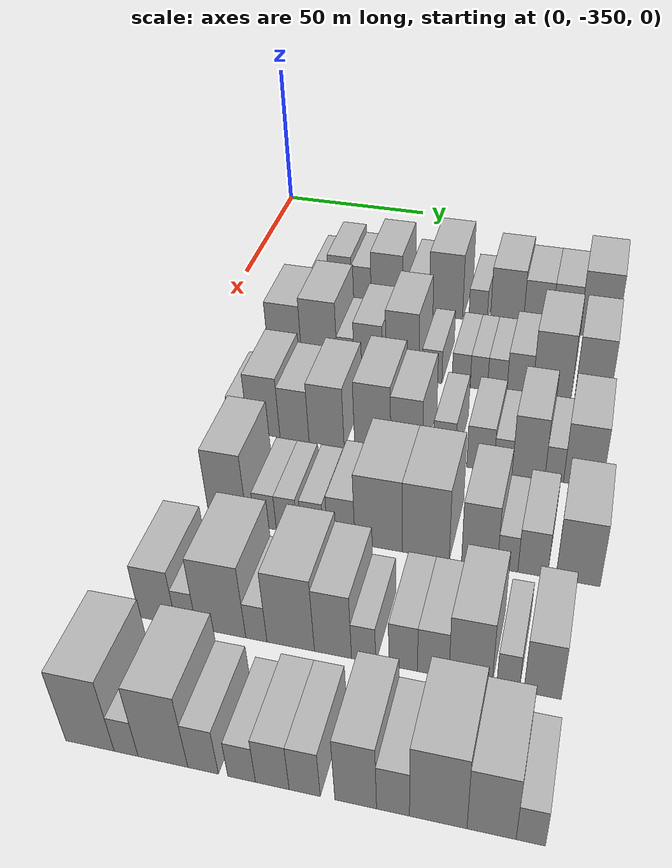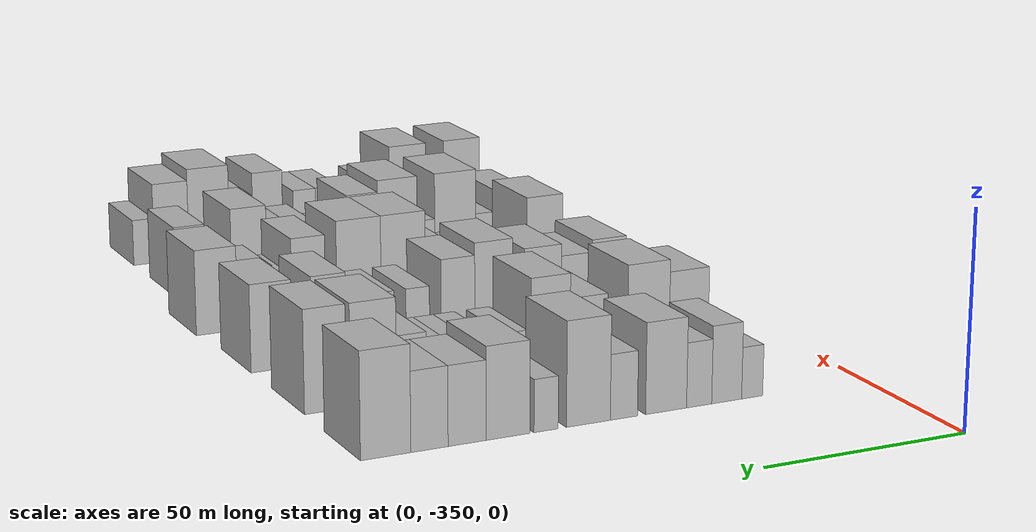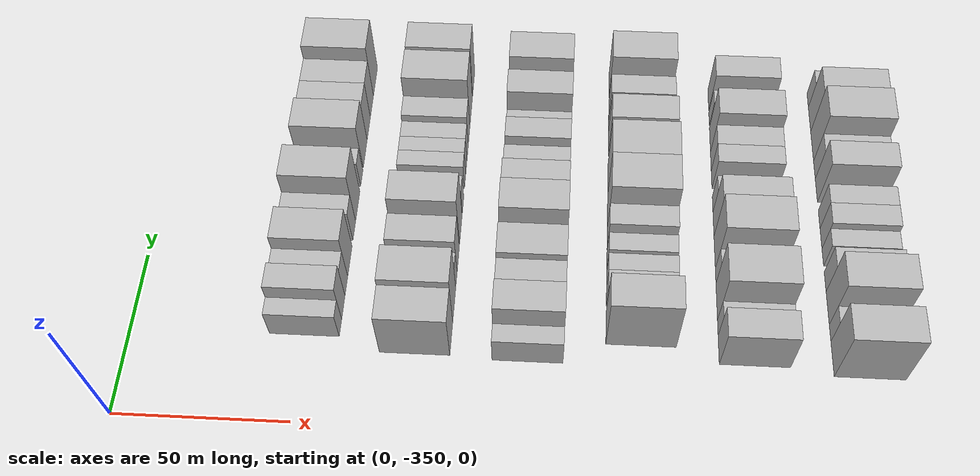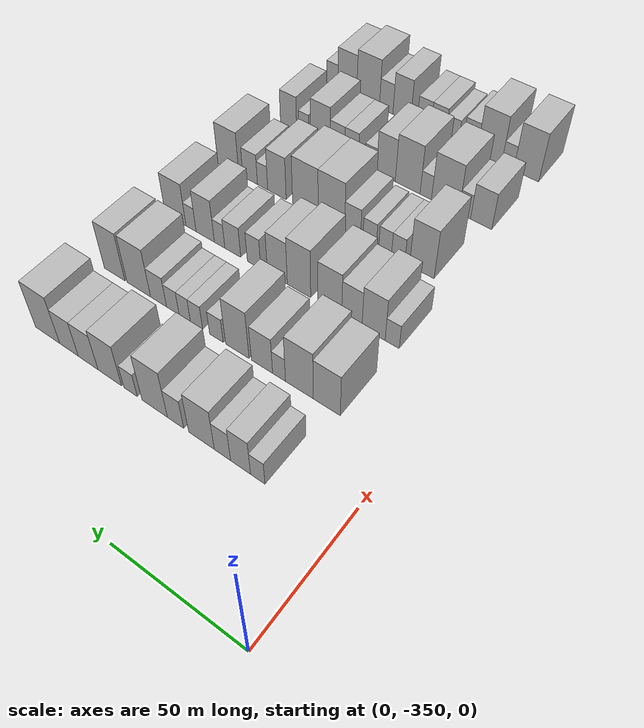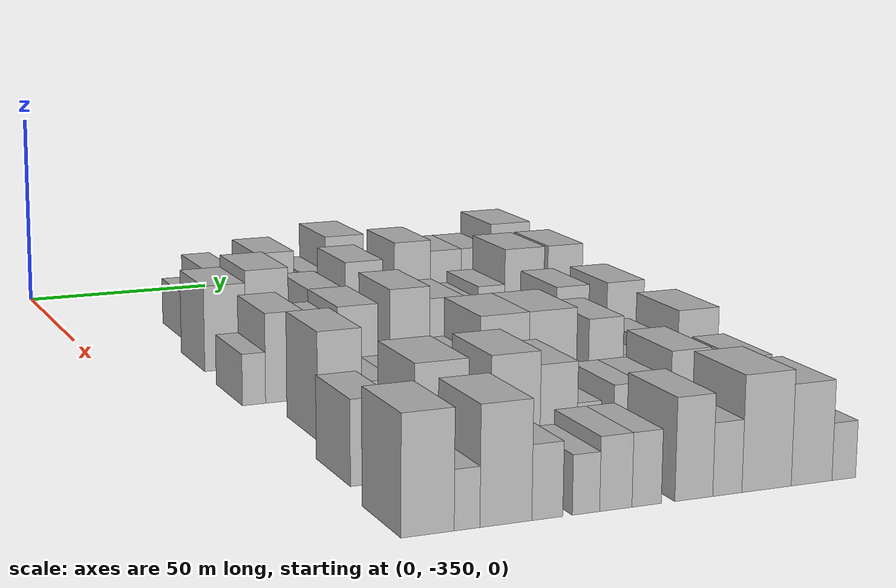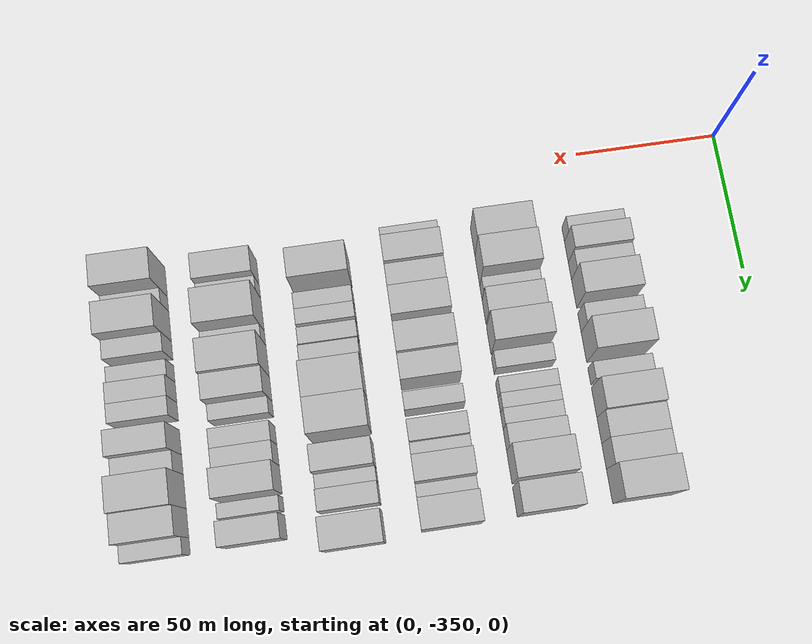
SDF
<sdf version="1.6">
 <world name="default">
  <model name="building_25">
   <static>1</static>
   <pose>50.0000 -320.9729 0 0.000000 0.000000 0.000000</pose>
   <link name="link">
    <pose>0 0 6.00 0 0 0</pose>
    <collision name="collision"><geometry><box><size>20.0000 5.4237 12.0000</size></box></geometry></collision>
    <visual name="visual">
     <cast_shadows>0</cast_shadows>
     <geometry><box><size>20.0000 5.4237 12.0000</size></box></geometry>
     <material>
      <script>
       <uri>model://HANNAS_wall/materials/scripts</uri>
       <uri>model://HANNAS_wall/materials/textures</uri>
       <name>vrc/HANNAS_wall</name>
      </script>
     </material>
    </visual>
   </link>
  </model>
  <model name="building_26">
   <static>1</static>
   <pose>50.0000 -314.4397 0 0.000000 0.000000 0.000000</pose>
   <link name="link">
    <pose>0 0 9.00 0 0 0</pose>
    <collision name="collision"><geometry><box><size>20.0000 7.6427 18.0000</size></box></geometry></collision>
    <visual name="visual">
     <cast_shadows>0</cast_shadows>
     <geometry><box><size>20.0000 7.6427 18.0000</size></box></geometry>
     <material>
      <script>
       <uri>model://HANNAS_wall/materials/scripts</uri>
       <uri>model://HANNAS_wall/materials/textures</uri>
       <name>vrc/HANNAS_wall</name>
      </script>
     </material>
    </visual>
   </link>
  </model>
  <model name="building_27">
   <static>1</static>
   <pose>50.0000 -307.4403 0 0.000000 0.000000 0.000000</pose>
   <link name="link">
    <pose>0 0 7.50 0 0 0</pose>
    <collision name="collision"><geometry><box><size>20.0000 6.3560 15.0000</size></box></geometry></collision>
    <visual name="visual">
     <cast_shadows>0</cast_shadows>
     <geometry><box><size>20.0000 6.3560 15.0000</size></box></geometry>
     <material>
      <script>
       <uri>model://HANNAS_wall/materials/scripts</uri>
       <uri>model://HANNAS_wall/materials/textures</uri>
       <name>vrc/HANNAS_wall</name>
      </script>
     </material>
    </visual>
   </link>
  </model>
  <model name="building_28">
   <static>1</static>
   <pose>50.0000 -299.1356 0 0.000000 0.000000 0.000000</pose>
   <link name="link">
    <pose>0 0 10.50 0 0 0</pose>
    <collision name="collision"><geometry><box><size>20.0000 10.2535 21.0000</size></box></geometry></collision>
    <visual name="visual">
     <cast_shadows>0</cast_shadows>
     <geometry><box><size>20.0000 10.2535 21.0000</size></box></geometry>
     <material>
      <script>
       <uri>model://HANNAS_wall/materials/scripts</uri>
       <uri>model://HANNAS_wall/materials/textures</uri>
       <name>vrc/HANNAS_wall</name>
      </script>
     </material>
    </visual>
   </link>
  </model>
  <model name="building_29">
   <static>1</static>
   <pose>50.0000 -288.6605 0 0.000000 0.000000 0.000000</pose>
   <link name="link">
    <pose>0 0 7.50 0 0 0</pose>
    <collision name="collision"><geometry><box><size>20.0000 6.6967 15.0000</size></box></geometry></collision>
    <visual name="visual">
     <cast_shadows>0</cast_shadows>
     <geometry><box><size>20.0000 6.6967 15.0000</size></box></geometry>
     <material>
      <script>
       <uri>model://HANNAS_wall/materials/scripts</uri>
       <uri>model://HANNAS_wall/materials/textures</uri>
       <name>vrc/HANNAS_wall</name>
      </script>
     </material>
    </visual>
   </link>
  </model>
  <model name="building_30">
   <static>1</static>
   <pose>50.0000 -279.9709 0 0.000000 0.000000 0.000000</pose>
   <link name="link">
    <pose>0 0 12.00 0 0 0</pose>
    <collision name="collision"><geometry><box><size>20.0000 10.6824 24.0000</size></box></geometry></collision>
    <visual name="visual">
     <cast_shadows>0</cast_shadows>
     <geometry><box><size>20.0000 10.6824 24.0000</size></box></geometry>
     <material>
      <script>
       <uri>model://HANNAS_wall/materials/scripts</uri>
       <uri>model://HANNAS_wall/materials/textures</uri>
       <name>vrc/HANNAS_wall</name>
      </script>
     </material>
    </visual>
   </link>
  </model>
  <model name="building_31">
   <static>1</static>
   <pose>50.0000 -269.7343 0 0.000000 0.000000 0.000000</pose>
   <link name="link">
    <pose>0 0 6.00 0 0 0</pose>
    <collision name="collision"><geometry><box><size>20.0000 5.7908 12.0000</size></box></geometry></collision>
    <visual name="visual">
     <cast_shadows>0</cast_shadows>
     <geometry><box><size>20.0000 5.7908 12.0000</size></box></geometry>
     <material>
      <script>
       <uri>model://HANNAS_wall/materials/scripts</uri>
       <uri>model://HANNAS_wall/materials/textures</uri>
       <name>vrc/HANNAS_wall</name>
      </script>
     </material>
    </visual>
   </link>
  </model>
  <model name="building_32">
   <static>1</static>
   <pose>50.0000 -260.6499 0 0.000000 0.000000 0.000000</pose>
   <link name="link">
    <pose>0 0 10.50 0 0 0</pose>
    <collision name="collision"><geometry><box><size>20.0000 10.3780 21.0000</size></box></geometry></collision>
    <visual name="visual">
     <cast_shadows>0</cast_shadows>
     <geometry><box><size>20.0000 10.3780 21.0000</size></box></geometry>
     <material>
      <script>
       <uri>model://HANNAS_wall/materials/scripts</uri>
       <uri>model://HANNAS_wall/materials/textures</uri>
       <name>vrc/HANNAS_wall</name>
      </script>
     </material>
    </visual>
   </link>
  </model>
  <model name="building_33">
   <static>1</static>
   <pose>50.0000 -251.0242 0 0.000000 0.000000 0.000000</pose>
   <link name="link">
    <pose>0 0 9.00 0 0 0</pose>
    <collision name="collision"><geometry><box><size>20.0000 8.8733 18.0000</size></box></geometry></collision>
    <visual name="visual">
     <cast_shadows>0</cast_shadows>
     <geometry><box><size>20.0000 8.8733 18.0000</size></box></geometry>
     <material>
      <script>
       <uri>model://HANNAS_wall/materials/scripts</uri>
       <uri>model://HANNAS_wall/materials/textures</uri>
       <name>vrc/HANNAS_wall</name>
      </script>
     </material>
    </visual>
   </link>
  </model>
  <model name="building_34">
   <static>1</static>
   <pose>50.0000 -242.2823 0 0.000000 0.000000 0.000000</pose>
   <link name="link">
    <pose>0 0 9.00 0 0 0</pose>
    <collision name="collision"><geometry><box><size>20.0000 8.6106 18.0000</size></box></geometry></collision>
    <visual name="visual">
     <cast_shadows>0</cast_shadows>
     <geometry><box><size>20.0000 8.6106 18.0000</size></box></geometry>
     <material>
      <script>
       <uri>model://HANNAS_wall/materials/scripts</uri>
       <uri>model://HANNAS_wall/materials/textures</uri>
       <name>vrc/HANNAS_wall</name>
      </script>
     </material>
    </visual>
   </link>
  </model>
  <model name="building_35">
   <static>1</static>
   <pose>50.0000 -232.2454 0 0.000000 0.000000 0.000000</pose>
   <link name="link">
    <pose>0 0 12.00 0 0 0</pose>
    <collision name="collision"><geometry><box><size>20.0000 11.4630 24.0000</size></box></geometry></collision>
    <visual name="visual">
     <cast_shadows>0</cast_shadows>
     <geometry><box><size>20.0000 11.4630 24.0000</size></box></geometry>
     <material>
      <script>
       <uri>model://HANNAS_wall/materials/scripts</uri>
       <uri>model://HANNAS_wall/materials/textures</uri>
       <name>vrc/HANNAS_wall</name>
      </script>
     </material>
    </visual>
   </link>
  </model>
  <model name="building_143">
   <static>1</static>
   <pose>82.0000 -322.7905 0 0.000000 0.000000 0.000000</pose>
   <link name="link">
    <pose>0 0 10.50 0 0 0</pose>
    <collision name="collision"><geometry><box><size>20.0000 10.4053 21.0000</size></box></geometry></collision>
    <visual name="visual">
     <cast_shadows>0</cast_shadows>
     <geometry><box><size>20.0000 10.4053 21.0000</size></box></geometry>
     <material>
      <script>
       <uri>model://HANNAS_wall/materials/scripts</uri>
       <uri>model://HANNAS_wall/materials/textures</uri>
       <name>vrc/HANNAS_wall</name>
      </script>
     </material>
    </visual>
   </link>
  </model>
  <model name="building_144">
   <static>1</static>
   <pose>82.0000 -312.1090 0 0.000000 0.000000 0.000000</pose>
   <link name="link">
    <pose>0 0 12.00 0 0 0</pose>
    <collision name="collision"><geometry><box><size>20.0000 10.9579 24.0000</size></box></geometry></collision>
    <visual name="visual">
     <cast_shadows>0</cast_shadows>
     <geometry><box><size>20.0000 10.9579 24.0000</size></box></geometry>
     <material>
      <script>
       <uri>model://HANNAS_wall/materials/scripts</uri>
       <uri>model://HANNAS_wall/materials/textures</uri>
       <name>vrc/HANNAS_wall</name>
      </script>
     </material>
    </visual>
   </link>
  </model>
  <model name="building_145">
   <static>1</static>
   <pose>82.0000 -304.0341 0 0.000000 0.000000 0.000000</pose>
   <link name="link">
    <pose>0 0 6.00 0 0 0</pose>
    <collision name="collision"><geometry><box><size>20.0000 5.1919 12.0000</size></box></geometry></collision>
    <visual name="visual">
     <cast_shadows>0</cast_shadows>
     <geometry><box><size>20.0000 5.1919 12.0000</size></box></geometry>
     <material>
      <script>
       <uri>model://HANNAS_wall/materials/scripts</uri>
       <uri>model://HANNAS_wall/materials/textures</uri>
       <name>vrc/HANNAS_wall</name>
      </script>
     </material>
    </visual>
   </link>
  </model>
  <model name="building_146">
   <static>1</static>
   <pose>82.0000 -297.1134 0 0.000000 0.000000 0.000000</pose>
   <link name="link">
    <pose>0 0 9.00 0 0 0</pose>
    <collision name="collision"><geometry><box><size>20.0000 8.6495 18.0000</size></box></geometry></collision>
    <visual name="visual">
     <cast_shadows>0</cast_shadows>
     <geometry><box><size>20.0000 8.6495 18.0000</size></box></geometry>
     <material>
      <script>
       <uri>model://HANNAS_wall/materials/scripts</uri>
       <uri>model://HANNAS_wall/materials/textures</uri>
       <name>vrc/HANNAS_wall</name>
      </script>
     </material>
    </visual>
   </link>
  </model>
  <model name="building_147">
   <static>1</static>
   <pose>82.0000 -286.8533 0 0.000000 0.000000 0.000000</pose>
   <link name="link">
    <pose>0 0 12.00 0 0 0</pose>
    <collision name="collision"><geometry><box><size>20.0000 9.8708 24.0000</size></box></geometry></collision>
    <visual name="visual">
     <cast_shadows>0</cast_shadows>
     <geometry><box><size>20.0000 9.8708 24.0000</size></box></geometry>
     <material>
      <script>
       <uri>model://HANNAS_wall/materials/scripts</uri>
       <uri>model://HANNAS_wall/materials/textures</uri>
       <name>vrc/HANNAS_wall</name>
      </script>
     </material>
    </visual>
   </link>
  </model>
  <model name="building_148">
   <static>1</static>
   <pose>82.0000 -277.9797 0 0.000000 0.000000 0.000000</pose>
   <link name="link">
    <pose>0 0 6.00 0 0 0</pose>
    <collision name="collision"><geometry><box><size>20.0000 5.8764 12.0000</size></box></geometry></collision>
    <visual name="visual">
     <cast_shadows>0</cast_shadows>
     <geometry><box><size>20.0000 5.8764 12.0000</size></box></geometry>
     <material>
      <script>
       <uri>model://HANNAS_wall/materials/scripts</uri>
       <uri>model://HANNAS_wall/materials/textures</uri>
       <name>vrc/HANNAS_wall</name>
      </script>
     </material>
    </visual>
   </link>
  </model>
  <model name="building_149">
   <static>1</static>
   <pose>82.0000 -269.3534 0 0.000000 0.000000 0.000000</pose>
   <link name="link">
    <pose>0 0 6.00 0 0 0</pose>
    <collision name="collision"><geometry><box><size>20.0000 5.3761 12.0000</size></box></geometry></collision>
    <visual name="visual">
     <cast_shadows>0</cast_shadows>
     <geometry><box><size>20.0000 5.3761 12.0000</size></box></geometry>
     <material>
      <script>
       <uri>model://HANNAS_wall/materials/scripts</uri>
       <uri>model://HANNAS_wall/materials/textures</uri>
       <name>vrc/HANNAS_wall</name>
      </script>
     </material>
    </visual>
   </link>
  </model>
  <model name="building_150">
   <static>1</static>
   <pose>82.0000 -264.1365 0 0.000000 0.000000 0.000000</pose>
   <link name="link">
    <pose>0 0 6.00 0 0 0</pose>
    <collision name="collision"><geometry><box><size>20.0000 5.0577 12.0000</size></box></geometry></collision>
    <visual name="visual">
     <cast_shadows>0</cast_shadows>
     <geometry><box><size>20.0000 5.0577 12.0000</size></box></geometry>
     <material>
      <script>
       <uri>model://HANNAS_wall/materials/scripts</uri>
       <uri>model://HANNAS_wall/materials/textures</uri>
       <name>vrc/HANNAS_wall</name>
      </script>
     </material>
    </visual>
   </link>
  </model>
  <model name="building_151">
   <static>1</static>
   <pose>82.0000 -258.7892 0 0.000000 0.000000 0.000000</pose>
   <link name="link">
    <pose>0 0 6.00 0 0 0</pose>
    <collision name="collision"><geometry><box><size>20.0000 5.6368 12.0000</size></box></geometry></collision>
    <visual name="visual">
     <cast_shadows>0</cast_shadows>
     <geometry><box><size>20.0000 5.6368 12.0000</size></box></geometry>
     <material>
      <script>
       <uri>model://HANNAS_wall/materials/scripts</uri>
       <uri>model://HANNAS_wall/materials/textures</uri>
       <name>vrc/HANNAS_wall</name>
      </script>
     </material>
    </visual>
   </link>
  </model>
  <model name="building_152">
   <static>1</static>
   <pose>82.0000 -252.3022 0 0.000000 0.000000 0.000000</pose>
   <link name="link">
    <pose>0 0 7.50 0 0 0</pose>
    <collision name="collision"><geometry><box><size>20.0000 7.3371 15.0000</size></box></geometry></collision>
    <visual name="visual">
     <cast_shadows>0</cast_shadows>
     <geometry><box><size>20.0000 7.3371 15.0000</size></box></geometry>
     <material>
      <script>
       <uri>model://HANNAS_wall/materials/scripts</uri>
       <uri>model://HANNAS_wall/materials/textures</uri>
       <name>vrc/HANNAS_wall</name>
      </script>
     </material>
    </visual>
   </link>
  </model>
  <model name="building_153">
   <static>1</static>
   <pose>82.0000 -243.1229 0 0.000000 0.000000 0.000000</pose>
   <link name="link">
    <pose>0 0 12.00 0 0 0</pose>
    <collision name="collision"><geometry><box><size>20.0000 11.0217 24.0000</size></box></geometry></collision>
    <visual name="visual">
     <cast_shadows>0</cast_shadows>
     <geometry><box><size>20.0000 11.0217 24.0000</size></box></geometry>
     <material>
      <script>
       <uri>model://HANNAS_wall/materials/scripts</uri>
       <uri>model://HANNAS_wall/materials/textures</uri>
       <name>vrc/HANNAS_wall</name>
      </script>
     </material>
    </visual>
   </link>
  </model>
  <model name="building_154">
   <static>1</static>
   <pose>82.0000 -231.6742 0 0.000000 0.000000 0.000000</pose>
   <link name="link">
    <pose>0 0 12.00 0 0 0</pose>
    <collision name="collision"><geometry><box><size>20.0000 9.8756 24.0000</size></box></geometry></collision>
    <visual name="visual">
     <cast_shadows>0</cast_shadows>
     <geometry><box><size>20.0000 9.8756 24.0000</size></box></geometry>
     <material>
      <script>
       <uri>model://HANNAS_wall/materials/scripts</uri>
       <uri>model://HANNAS_wall/materials/textures</uri>
       <name>vrc/HANNAS_wall</name>
      </script>
     </material>
    </visual>
   </link>
  </model>
  <model name="building_269">
   <static>1</static>
   <pose>114.0000 -326.0721 0 0.000000 0.000000 0.000000</pose>
   <link name="link">
    <pose>0 0 6.00 0 0 0</pose>
    <collision name="collision"><geometry><box><size>20.0000 5.5373 12.0000</size></box></geometry></collision>
    <visual name="visual">
     <cast_shadows>0</cast_shadows>
     <geometry><box><size>20.0000 5.5373 12.0000</size></box></geometry>
     <material>
      <script>
       <uri>model://HANNAS_wall/materials/scripts</uri>
       <uri>model://HANNAS_wall/materials/textures</uri>
       <name>vrc/HANNAS_wall</name>
      </script>
     </material>
    </visual>
   </link>
  </model>
  <model name="building_270">
   <static>1</static>
   <pose>114.0000 -318.6926 0 0.000000 0.000000 0.000000</pose>
   <link name="link">
    <pose>0 0 10.50 0 0 0</pose>
    <collision name="collision"><geometry><box><size>20.0000 9.2217 21.0000</size></box></geometry></collision>
    <visual name="visual">
     <cast_shadows>0</cast_shadows>
     <geometry><box><size>20.0000 9.2217 21.0000</size></box></geometry>
     <material>
      <script>
       <uri>model://HANNAS_wall/materials/scripts</uri>
       <uri>model://HANNAS_wall/materials/textures</uri>
       <name>vrc/HANNAS_wall</name>
      </script>
     </material>
    </visual>
   </link>
  </model>
  <model name="building_271">
   <static>1</static>
   <pose>114.0000 -309.9332 0 0.000000 0.000000 0.000000</pose>
   <link name="link">
    <pose>0 0 9.00 0 0 0</pose>
    <collision name="collision"><geometry><box><size>20.0000 8.2973 18.0000</size></box></geometry></collision>
    <visual name="visual">
     <cast_shadows>0</cast_shadows>
     <geometry><box><size>20.0000 8.2973 18.0000</size></box></geometry>
     <material>
      <script>
       <uri>model://HANNAS_wall/materials/scripts</uri>
       <uri>model://HANNAS_wall/materials/textures</uri>
       <name>vrc/HANNAS_wall</name>
      </script>
     </material>
    </visual>
   </link>
  </model>
  <model name="building_272">
   <static>1</static>
   <pose>114.0000 -300.8141 0 0.000000 0.000000 0.000000</pose>
   <link name="link">
    <pose>0 0 10.50 0 0 0</pose>
    <collision name="collision"><geometry><box><size>20.0000 9.9409 21.0000</size></box></geometry></collision>
    <visual name="visual">
     <cast_shadows>0</cast_shadows>
     <geometry><box><size>20.0000 9.9409 21.0000</size></box></geometry>
     <material>
      <script>
       <uri>model://HANNAS_wall/materials/scripts</uri>
       <uri>model://HANNAS_wall/materials/textures</uri>
       <name>vrc/HANNAS_wall</name>
      </script>
     </material>
    </visual>
   </link>
  </model>
  <model name="building_273">
   <static>1</static>
   <pose>114.0000 -287.8346 0 0.000000 0.000000 0.000000</pose>
   <link name="link">
    <pose>0 0 12.00 0 0 0</pose>
    <collision name="collision"><geometry><box><size>20.0000 10.0182 24.0000</size></box></geometry></collision>
    <visual name="visual">
     <cast_shadows>0</cast_shadows>
     <geometry><box><size>20.0000 10.0182 24.0000</size></box></geometry>
     <material>
      <script>
       <uri>model://HANNAS_wall/materials/scripts</uri>
       <uri>model://HANNAS_wall/materials/textures</uri>
       <name>vrc/HANNAS_wall</name>
      </script>
     </material>
    </visual>
   </link>
  </model>
  <model name="building_274">
   <static>1</static>
   <pose>114.0000 -278.4718 0 0.000000 0.000000 0.000000</pose>
   <link name="link">
    <pose>0 0 10.50 0 0 0</pose>
    <collision name="collision"><geometry><box><size>20.0000 8.7074 21.0000</size></box></geometry></collision>
    <visual name="visual">
     <cast_shadows>0</cast_shadows>
     <geometry><box><size>20.0000 8.7074 21.0000</size></box></geometry>
     <material>
      <script>
       <uri>model://HANNAS_wall/materials/scripts</uri>
       <uri>model://HANNAS_wall/materials/textures</uri>
       <name>vrc/HANNAS_wall</name>
      </script>
     </material>
    </visual>
   </link>
  </model>
  <model name="building_275">
   <static>1</static>
   <pose>114.0000 -268.1037 0 0.000000 0.000000 0.000000</pose>
   <link name="link">
    <pose>0 0 7.50 0 0 0</pose>
    <collision name="collision"><geometry><box><size>20.0000 6.0289 15.0000</size></box></geometry></collision>
    <visual name="visual">
     <cast_shadows>0</cast_shadows>
     <geometry><box><size>20.0000 6.0289 15.0000</size></box></geometry>
     <material>
      <script>
       <uri>model://HANNAS_wall/materials/scripts</uri>
       <uri>model://HANNAS_wall/materials/textures</uri>
       <name>vrc/HANNAS_wall</name>
      </script>
     </material>
    </visual>
   </link>
  </model>
  <model name="building_276">
   <static>1</static>
   <pose>114.0000 -258.4521 0 0.000000 0.000000 0.000000</pose>
   <link name="link">
    <pose>0 0 7.50 0 0 0</pose>
    <collision name="collision"><geometry><box><size>20.0000 7.2742 15.0000</size></box></geometry></collision>
    <visual name="visual">
     <cast_shadows>0</cast_shadows>
     <geometry><box><size>20.0000 7.2742 15.0000</size></box></geometry>
     <material>
      <script>
       <uri>model://HANNAS_wall/materials/scripts</uri>
       <uri>model://HANNAS_wall/materials/textures</uri>
       <name>vrc/HANNAS_wall</name>
      </script>
     </material>
    </visual>
   </link>
  </model>
  <model name="building_277">
   <static>1</static>
   <pose>114.0000 -252.3775 0 0.000000 0.000000 0.000000</pose>
   <link name="link">
    <pose>0 0 6.00 0 0 0</pose>
    <collision name="collision"><geometry><box><size>20.0000 4.8749 12.0000</size></box></geometry></collision>
    <visual name="visual">
     <cast_shadows>0</cast_shadows>
     <geometry><box><size>20.0000 4.8749 12.0000</size></box></geometry>
     <material>
      <script>
       <uri>model://HANNAS_wall/materials/scripts</uri>
       <uri>model://HANNAS_wall/materials/textures</uri>
       <name>vrc/HANNAS_wall</name>
      </script>
     </material>
    </visual>
   </link>
  </model>
  <model name="building_278">
   <static>1</static>
   <pose>114.0000 -245.6143 0 0.000000 0.000000 0.000000</pose>
   <link name="link">
    <pose>0 0 10.50 0 0 0</pose>
    <collision name="collision"><geometry><box><size>20.0000 8.6516 21.0000</size></box></geometry></collision>
    <visual name="visual">
     <cast_shadows>0</cast_shadows>
     <geometry><box><size>20.0000 8.6516 21.0000</size></box></geometry>
     <material>
      <script>
       <uri>model://HANNAS_wall/materials/scripts</uri>
       <uri>model://HANNAS_wall/materials/textures</uri>
       <name>vrc/HANNAS_wall</name>
      </script>
     </material>
    </visual>
   </link>
  </model>
  <model name="building_279">
   <static>1</static>
   <pose>114.0000 -238.8471 0 0.000000 0.000000 0.000000</pose>
   <link name="link">
    <pose>0 0 6.00 0 0 0</pose>
    <collision name="collision"><geometry><box><size>20.0000 4.8829 12.0000</size></box></geometry></collision>
    <visual name="visual">
     <cast_shadows>0</cast_shadows>
     <geometry><box><size>20.0000 4.8829 12.0000</size></box></geometry>
     <material>
      <script>
       <uri>model://HANNAS_wall/materials/scripts</uri>
       <uri>model://HANNAS_wall/materials/textures</uri>
       <name>vrc/HANNAS_wall</name>
      </script>
     </material>
    </visual>
   </link>
  </model>
  <model name="building_280">
   <static>1</static>
   <pose>114.0000 -231.3803 0 0.000000 0.000000 0.000000</pose>
   <link name="link">
    <pose>0 0 10.50 0 0 0</pose>
    <collision name="collision"><geometry><box><size>20.0000 10.0508 21.0000</size></box></geometry></collision>
    <visual name="visual">
     <cast_shadows>0</cast_shadows>
     <geometry><box><size>20.0000 10.0508 21.0000</size></box></geometry>
     <material>
      <script>
       <uri>model://HANNAS_wall/materials/scripts</uri>
       <uri>model://HANNAS_wall/materials/textures</uri>
       <name>vrc/HANNAS_wall</name>
      </script>
     </material>
    </visual>
   </link>
  </model>
  <model name="building_378">
   <static>1</static>
   <pose>146.0000 -317.3014 0 0.000000 0.000000 0.000000</pose>
   <link name="link">
    <pose>0 0 12.00 0 0 0</pose>
    <collision name="collision"><geometry><box><size>20.0000 10.0810 24.0000</size></box></geometry></collision>
    <visual name="visual">
     <cast_shadows>0</cast_shadows>
     <geometry><box><size>20.0000 10.0810 24.0000</size></box></geometry>
     <material>
      <script>
       <uri>model://HANNAS_wall/materials/scripts</uri>
       <uri>model://HANNAS_wall/materials/textures</uri>
       <name>vrc/HANNAS_wall</name>
      </script>
     </material>
    </visual>
   </link>
  </model>
  <model name="building_379">
   <static>1</static>
   <pose>146.0000 -307.4559 0 0.000000 0.000000 0.000000</pose>
   <link name="link">
    <pose>0 0 6.00 0 0 0</pose>
    <collision name="collision"><geometry><box><size>20.0000 5.6100 12.0000</size></box></geometry></collision>
    <visual name="visual">
     <cast_shadows>0</cast_shadows>
     <geometry><box><size>20.0000 5.6100 12.0000</size></box></geometry>
     <material>
      <script>
       <uri>model://HANNAS_wall/materials/scripts</uri>
       <uri>model://HANNAS_wall/materials/textures</uri>
       <name>vrc/HANNAS_wall</name>
      </script>
     </material>
    </visual>
   </link>
  </model>
  <model name="building_380">
   <static>1</static>
   <pose>146.0000 -301.9256 0 0.000000 0.000000 0.000000</pose>
   <link name="link">
    <pose>0 0 6.00 0 0 0</pose>
    <collision name="collision"><geometry><box><size>20.0000 5.4507 12.0000</size></box></geometry></collision>
    <visual name="visual">
     <cast_shadows>0</cast_shadows>
     <geometry><box><size>20.0000 5.4507 12.0000</size></box></geometry>
     <material>
      <script>
       <uri>model://HANNAS_wall/materials/scripts</uri>
       <uri>model://HANNAS_wall/materials/textures</uri>
       <name>vrc/HANNAS_wall</name>
      </script>
     </material>
    </visual>
   </link>
  </model>
  <model name="building_381">
   <static>1</static>
   <pose>146.0000 -295.2939 0 0.000000 0.000000 0.000000</pose>
   <link name="link">
    <pose>0 0 6.00 0 0 0</pose>
    <collision name="collision"><geometry><box><size>20.0000 5.8128 12.0000</size></box></geometry></collision>
    <visual name="visual">
     <cast_shadows>0</cast_shadows>
     <geometry><box><size>20.0000 5.8128 12.0000</size></box></geometry>
     <material>
      <script>
       <uri>model://HANNAS_wall/materials/scripts</uri>
       <uri>model://HANNAS_wall/materials/textures</uri>
       <name>vrc/HANNAS_wall</name>
      </script>
     </material>
    </visual>
   </link>
  </model>
  <model name="building_382">
   <static>1</static>
   <pose>146.0000 -287.8736 0 0.000000 0.000000 0.000000</pose>
   <link name="link">
    <pose>0 0 7.50 0 0 0</pose>
    <collision name="collision"><geometry><box><size>20.0000 7.0278 15.0000</size></box></geometry></collision>
    <visual name="visual">
     <cast_shadows>0</cast_shadows>
     <geometry><box><size>20.0000 7.0278 15.0000</size></box></geometry>
     <material>
      <script>
       <uri>model://HANNAS_wall/materials/scripts</uri>
       <uri>model://HANNAS_wall/materials/textures</uri>
       <name>vrc/HANNAS_wall</name>
      </script>
     </material>
    </visual>
   </link>
  </model>
  <model name="building_383">
   <static>1</static>
   <pose>146.0000 -278.4149 0 0.000000 0.000000 0.000000</pose>
   <link name="link">
    <pose>0 0 12.00 0 0 0</pose>
    <collision name="collision"><geometry><box><size>20.0000 11.8895 24.0000</size></box></geometry></collision>
    <visual name="visual">
     <cast_shadows>0</cast_shadows>
     <geometry><box><size>20.0000 11.8895 24.0000</size></box></geometry>
     <material>
      <script>
       <uri>model://HANNAS_wall/materials/scripts</uri>
       <uri>model://HANNAS_wall/materials/textures</uri>
       <name>vrc/HANNAS_wall</name>
      </script>
     </material>
    </visual>
   </link>
  </model>
  <model name="building_384">
   <static>1</static>
   <pose>146.0000 -266.6075 0 0.000000 0.000000 0.000000</pose>
   <link name="link">
    <pose>0 0 12.00 0 0 0</pose>
    <collision name="collision"><geometry><box><size>20.0000 11.7251 24.0000</size></box></geometry></collision>
    <visual name="visual">
     <cast_shadows>0</cast_shadows>
     <geometry><box><size>20.0000 11.7251 24.0000</size></box></geometry>
     <material>
      <script>
       <uri>model://HANNAS_wall/materials/scripts</uri>
       <uri>model://HANNAS_wall/materials/textures</uri>
       <name>vrc/HANNAS_wall</name>
      </script>
     </material>
    </visual>
   </link>
  </model>
  <model name="building_385">
   <static>1</static>
   <pose>146.0000 -253.3833 0 0.000000 0.000000 0.000000</pose>
   <link name="link">
    <pose>0 0 10.50 0 0 0</pose>
    <collision name="collision"><geometry><box><size>20.0000 8.7234 21.0000</size></box></geometry></collision>
    <visual name="visual">
     <cast_shadows>0</cast_shadows>
     <geometry><box><size>20.0000 8.7234 21.0000</size></box></geometry>
     <material>
      <script>
       <uri>model://HANNAS_wall/materials/scripts</uri>
       <uri>model://HANNAS_wall/materials/textures</uri>
       <name>vrc/HANNAS_wall</name>
      </script>
     </material>
    </visual>
   </link>
  </model>
  <model name="building_386">
   <static>1</static>
   <pose>146.0000 -246.5433 0 0.000000 0.000000 0.000000</pose>
   <link name="link">
    <pose>0 0 6.00 0 0 0</pose>
    <collision name="collision"><geometry><box><size>20.0000 4.9566 12.0000</size></box></geometry></collision>
    <visual name="visual">
     <cast_shadows>0</cast_shadows>
     <geometry><box><size>20.0000 4.9566 12.0000</size></box></geometry>
     <material>
      <script>
       <uri>model://HANNAS_wall/materials/scripts</uri>
       <uri>model://HANNAS_wall/materials/textures</uri>
       <name>vrc/HANNAS_wall</name>
      </script>
     </material>
    </visual>
   </link>
  </model>
  <model name="building_387">
   <static>1</static>
   <pose>146.0000 -240.5183 0 0.000000 0.000000 0.000000</pose>
   <link name="link">
    <pose>0 0 7.50 0 0 0</pose>
    <collision name="collision"><geometry><box><size>20.0000 7.0932 15.0000</size></box></geometry></collision>
    <visual name="visual">
     <cast_shadows>0</cast_shadows>
     <geometry><box><size>20.0000 7.0932 15.0000</size></box></geometry>
     <material>
      <script>
       <uri>model://HANNAS_wall/materials/scripts</uri>
       <uri>model://HANNAS_wall/materials/textures</uri>
       <name>vrc/HANNAS_wall</name>
      </script>
     </material>
    </visual>
   </link>
  </model>
  <model name="building_388">
   <static>1</static>
   <pose>146.0000 -229.7386 0 0.000000 0.000000 0.000000</pose>
   <link name="link">
    <pose>0 0 10.50 0 0 0</pose>
    <collision name="collision"><geometry><box><size>20.0000 10.4663 21.0000</size></box></geometry></collision>
    <visual name="visual">
     <cast_shadows>0</cast_shadows>
     <geometry><box><size>20.0000 10.4663 21.0000</size></box></geometry>
     <material>
      <script>
       <uri>model://HANNAS_wall/materials/scripts</uri>
       <uri>model://HANNAS_wall/materials/textures</uri>
       <name>vrc/HANNAS_wall</name>
      </script>
     </material>
    </visual>
   </link>
  </model>
  <model name="building_495">
   <static>1</static>
   <pose>178.0000 -322.5860 0 0.000000 0.000000 0.000000</pose>
   <link name="link">
    <pose>0 0 9.00 0 0 0</pose>
    <collision name="collision"><geometry><box><size>20.0000 8.8535 18.0000</size></box></geometry></collision>
    <visual name="visual">
     <cast_shadows>0</cast_shadows>
     <geometry><box><size>20.0000 8.8535 18.0000</size></box></geometry>
     <material>
      <script>
       <uri>model://HANNAS_wall/materials/scripts</uri>
       <uri>model://HANNAS_wall/materials/textures</uri>
       <name>vrc/HANNAS_wall</name>
      </script>
     </material>
    </visual>
   </link>
  </model>
  <model name="building_496">
   <static>1</static>
   <pose>178.0000 -315.6663 0 0.000000 0.000000 0.000000</pose>
   <link name="link">
    <pose>0 0 6.00 0 0 0</pose>
    <collision name="collision"><geometry><box><size>20.0000 4.9861 12.0000</size></box></geometry></collision>
    <visual name="visual">
     <cast_shadows>0</cast_shadows>
     <geometry><box><size>20.0000 4.9861 12.0000</size></box></geometry>
     <material>
      <script>
       <uri>model://HANNAS_wall/materials/scripts</uri>
       <uri>model://HANNAS_wall/materials/textures</uri>
       <name>vrc/HANNAS_wall</name>
      </script>
     </material>
    </visual>
   </link>
  </model>
  <model name="building_497">
   <static>1</static>
   <pose>178.0000 -307.2664 0 0.000000 0.000000 0.000000</pose>
   <link name="link">
    <pose>0 0 12.00 0 0 0</pose>
    <collision name="collision"><geometry><box><size>20.0000 11.8137 24.0000</size></box></geometry></collision>
    <visual name="visual">
     <cast_shadows>0</cast_shadows>
     <geometry><box><size>20.0000 11.8137 24.0000</size></box></geometry>
     <material>
      <script>
       <uri>model://HANNAS_wall/materials/scripts</uri>
       <uri>model://HANNAS_wall/materials/textures</uri>
       <name>vrc/HANNAS_wall</name>
      </script>
     </material>
    </visual>
   </link>
  </model>
  <model name="building_498">
   <static>1</static>
   <pose>178.0000 -298.8544 0 0.000000 0.000000 0.000000</pose>
   <link name="link">
    <pose>0 0 6.00 0 0 0</pose>
    <collision name="collision"><geometry><box><size>20.0000 5.0103 12.0000</size></box></geometry></collision>
    <visual name="visual">
     <cast_shadows>0</cast_shadows>
     <geometry><box><size>20.0000 5.0103 12.0000</size></box></geometry>
     <material>
      <script>
       <uri>model://HANNAS_wall/materials/scripts</uri>
       <uri>model://HANNAS_wall/materials/textures</uri>
       <name>vrc/HANNAS_wall</name>
      </script>
     </material>
    </visual>
   </link>
  </model>
  <model name="building_499">
   <static>1</static>
   <pose>178.0000 -290.8019 0 0.000000 0.000000 0.000000</pose>
   <link name="link">
    <pose>0 0 12.00 0 0 0</pose>
    <collision name="collision"><geometry><box><size>20.0000 11.0945 24.0000</size></box></geometry></collision>
    <visual name="visual">
     <cast_shadows>0</cast_shadows>
     <geometry><box><size>20.0000 11.0945 24.0000</size></box></geometry>
     <material>
      <script>
       <uri>model://HANNAS_wall/materials/scripts</uri>
       <uri>model://HANNAS_wall/materials/textures</uri>
       <name>vrc/HANNAS_wall</name>
      </script>
     </material>
    </visual>
   </link>
  </model>
  <model name="building_500">
   <static>1</static>
   <pose>178.0000 -280.9838 0 0.000000 0.000000 0.000000</pose>
   <link name="link">
    <pose>0 0 10.50 0 0 0</pose>
    <collision name="collision"><geometry><box><size>20.0000 8.5418 21.0000</size></box></geometry></collision>
    <visual name="visual">
     <cast_shadows>0</cast_shadows>
     <geometry><box><size>20.0000 8.5418 21.0000</size></box></geometry>
     <material>
      <script>
       <uri>model://HANNAS_wall/materials/scripts</uri>
       <uri>model://HANNAS_wall/materials/textures</uri>
       <name>vrc/HANNAS_wall</name>
      </script>
     </material>
    </visual>
   </link>
  </model>
  <model name="building_501">
   <static>1</static>
   <pose>178.0000 -273.9563 0 0.000000 0.000000 0.000000</pose>
   <link name="link">
    <pose>0 0 6.00 0 0 0</pose>
    <collision name="collision"><geometry><box><size>20.0000 5.5132 12.0000</size></box></geometry></collision>
    <visual name="visual">
     <cast_shadows>0</cast_shadows>
     <geometry><box><size>20.0000 5.5132 12.0000</size></box></geometry>
     <material>
      <script>
       <uri>model://HANNAS_wall/materials/scripts</uri>
       <uri>model://HANNAS_wall/materials/textures</uri>
       <name>vrc/HANNAS_wall</name>
      </script>
     </material>
    </visual>
   </link>
  </model>
  <model name="building_502">
   <static>1</static>
   <pose>178.0000 -264.9901 0 0.000000 0.000000 0.000000</pose>
   <link name="link">
    <pose>0 0 7.50 0 0 0</pose>
    <collision name="collision"><geometry><box><size>20.0000 6.4192 15.0000</size></box></geometry></collision>
    <visual name="visual">
     <cast_shadows>0</cast_shadows>
     <geometry><box><size>20.0000 6.4192 15.0000</size></box></geometry>
     <material>
      <script>
       <uri>model://HANNAS_wall/materials/scripts</uri>
       <uri>model://HANNAS_wall/materials/textures</uri>
       <name>vrc/HANNAS_wall</name>
      </script>
     </material>
    </visual>
   </link>
  </model>
  <model name="building_503">
   <static>1</static>
   <pose>178.0000 -258.2792 0 0.000000 0.000000 0.000000</pose>
   <link name="link">
    <pose>0 0 7.50 0 0 0</pose>
    <collision name="collision"><geometry><box><size>20.0000 7.0025 15.0000</size></box></geometry></collision>
    <visual name="visual">
     <cast_shadows>0</cast_shadows>
     <geometry><box><size>20.0000 7.0025 15.0000</size></box></geometry>
     <material>
      <script>
       <uri>model://HANNAS_wall/materials/scripts</uri>
       <uri>model://HANNAS_wall/materials/textures</uri>
       <name>vrc/HANNAS_wall</name>
      </script>
     </material>
    </visual>
   </link>
  </model>
  <model name="building_504">
   <static>1</static>
   <pose>178.0000 -250.0462 0 0.000000 0.000000 0.000000</pose>
   <link name="link">
    <pose>0 0 10.50 0 0 0</pose>
    <collision name="collision"><geometry><box><size>20.0000 9.4635 21.0000</size></box></geometry></collision>
    <visual name="visual">
     <cast_shadows>0</cast_shadows>
     <geometry><box><size>20.0000 9.4635 21.0000</size></box></geometry>
     <material>
      <script>
       <uri>model://HANNAS_wall/materials/scripts</uri>
       <uri>model://HANNAS_wall/materials/textures</uri>
       <name>vrc/HANNAS_wall</name>
      </script>
     </material>
    </visual>
   </link>
  </model>
  <model name="building_505">
   <static>1</static>
   <pose>178.0000 -241.8561 0 0.000000 0.000000 0.000000</pose>
   <link name="link">
    <pose>0 0 6.00 0 0 0</pose>
    <collision name="collision"><geometry><box><size>20.0000 4.9167 12.0000</size></box></geometry></collision>
    <visual name="visual">
     <cast_shadows>0</cast_shadows>
     <geometry><box><size>20.0000 4.9167 12.0000</size></box></geometry>
     <material>
      <script>
       <uri>model://HANNAS_wall/materials/scripts</uri>
       <uri>model://HANNAS_wall/materials/textures</uri>
       <name>vrc/HANNAS_wall</name>
      </script>
     </material>
    </visual>
   </link>
  </model>
  <model name="building_506">
   <static>1</static>
   <pose>178.0000 -234.3718 0 0.000000 0.000000 0.000000</pose>
   <link name="link">
    <pose>0 0 9.00 0 0 0</pose>
    <collision name="collision"><geometry><box><size>20.0000 8.0520 18.0000</size></box></geometry></collision>
    <visual name="visual">
     <cast_shadows>0</cast_shadows>
     <geometry><box><size>20.0000 8.0520 18.0000</size></box></geometry>
     <material>
      <script>
       <uri>model://HANNAS_wall/materials/scripts</uri>
       <uri>model://HANNAS_wall/materials/textures</uri>
       <name>vrc/HANNAS_wall</name>
      </script>
     </material>
    </visual>
   </link>
  </model>
  <model name="building_609">
   <static>1</static>
   <pose>210.0000 -323.8188 0 0.000000 0.000000 0.000000</pose>
   <link name="link">
    <pose>0 0 12.00 0 0 0</pose>
    <collision name="collision"><geometry><box><size>20.0000 10.7503 24.0000</size></box></geometry></collision>
    <visual name="visual">
     <cast_shadows>0</cast_shadows>
     <geometry><box><size>20.0000 10.7503 24.0000</size></box></geometry>
     <material>
      <script>
       <uri>model://HANNAS_wall/materials/scripts</uri>
       <uri>model://HANNAS_wall/materials/textures</uri>
       <name>vrc/HANNAS_wall</name>
      </script>
     </material>
    </visual>
   </link>
  </model>
  <model name="building_610">
   <static>1</static>
   <pose>210.0000 -315.8122 0 0.000000 0.000000 0.000000</pose>
   <link name="link">
    <pose>0 0 6.00 0 0 0</pose>
    <collision name="collision"><geometry><box><size>20.0000 5.2630 12.0000</size></box></geometry></collision>
    <visual name="visual">
     <cast_shadows>0</cast_shadows>
     <geometry><box><size>20.0000 5.2630 12.0000</size></box></geometry>
     <material>
      <script>
       <uri>model://HANNAS_wall/materials/scripts</uri>
       <uri>model://HANNAS_wall/materials/textures</uri>
       <name>vrc/HANNAS_wall</name>
      </script>
     </material>
    </visual>
   </link>
  </model>
  <model name="building_611">
   <static>1</static>
   <pose>210.0000 -307.7878 0 0.000000 0.000000 0.000000</pose>
   <link name="link">
    <pose>0 0 12.00 0 0 0</pose>
    <collision name="collision"><geometry><box><size>20.0000 10.7857 24.0000</size></box></geometry></collision>
    <visual name="visual">
     <cast_shadows>0</cast_shadows>
     <geometry><box><size>20.0000 10.7857 24.0000</size></box></geometry>
     <material>
      <script>
       <uri>model://HANNAS_wall/materials/scripts</uri>
       <uri>model://HANNAS_wall/materials/textures</uri>
       <name>vrc/HANNAS_wall</name>
      </script>
     </material>
    </visual>
   </link>
  </model>
  <model name="building_612">
   <static>1</static>
   <pose>210.0000 -299.1257 0 0.000000 0.000000 0.000000</pose>
   <link name="link">
    <pose>0 0 7.50 0 0 0</pose>
    <collision name="collision"><geometry><box><size>20.0000 6.5386 15.0000</size></box></geometry></collision>
    <visual name="visual">
     <cast_shadows>0</cast_shadows>
     <geometry><box><size>20.0000 6.5386 15.0000</size></box></geometry>
     <material>
      <script>
       <uri>model://HANNAS_wall/materials/scripts</uri>
       <uri>model://HANNAS_wall/materials/textures</uri>
       <name>vrc/HANNAS_wall</name>
      </script>
     </material>
    </visual>
   </link>
  </model>
  <model name="building_613">
   <static>1</static>
   <pose>210.0000 -290.9300 0 0.000000 0.000000 0.000000</pose>
   <link name="link">
    <pose>0 0 6.00 0 0 0</pose>
    <collision name="collision"><geometry><box><size>20.0000 5.8527 12.0000</size></box></geometry></collision>
    <visual name="visual">
     <cast_shadows>0</cast_shadows>
     <geometry><box><size>20.0000 5.8527 12.0000</size></box></geometry>
     <material>
      <script>
       <uri>model://HANNAS_wall/materials/scripts</uri>
       <uri>model://HANNAS_wall/materials/textures</uri>
       <name>vrc/HANNAS_wall</name>
      </script>
     </material>
    </visual>
   </link>
  </model>
  <model name="building_614">
   <static>1</static>
   <pose>210.0000 -284.4965 0 0.000000 0.000000 0.000000</pose>
   <link name="link">
    <pose>0 0 7.50 0 0 0</pose>
    <collision name="collision"><geometry><box><size>20.0000 7.0144 15.0000</size></box></geometry></collision>
    <visual name="visual">
     <cast_shadows>0</cast_shadows>
     <geometry><box><size>20.0000 7.0144 15.0000</size></box></geometry>
     <material>
      <script>
       <uri>model://HANNAS_wall/materials/scripts</uri>
       <uri>model://HANNAS_wall/materials/textures</uri>
       <name>vrc/HANNAS_wall</name>
      </script>
     </material>
    </visual>
   </link>
  </model>
  <model name="building_615">
   <static>1</static>
   <pose>210.0000 -277.7788 0 0.000000 0.000000 0.000000</pose>
   <link name="link">
    <pose>0 0 7.50 0 0 0</pose>
    <collision name="collision"><geometry><box><size>20.0000 6.4211 15.0000</size></box></geometry></collision>
    <visual name="visual">
     <cast_shadows>0</cast_shadows>
     <geometry><box><size>20.0000 6.4211 15.0000</size></box></geometry>
     <material>
      <script>
       <uri>model://HANNAS_wall/materials/scripts</uri>
       <uri>model://HANNAS_wall/materials/textures</uri>
       <name>vrc/HANNAS_wall</name>
      </script>
     </material>
    </visual>
   </link>
  </model>
  <model name="building_616">
   <static>1</static>
   <pose>210.0000 -267.3397 0 0.000000 0.000000 0.000000</pose>
   <link name="link">
    <pose>0 0 10.50 0 0 0</pose>
    <collision name="collision"><geometry><box><size>20.0000 8.4571 21.0000</size></box></geometry></collision>
    <visual name="visual">
     <cast_shadows>0</cast_shadows>
     <geometry><box><size>20.0000 8.4571 21.0000</size></box></geometry>
     <material>
      <script>
       <uri>model://HANNAS_wall/materials/scripts</uri>
       <uri>model://HANNAS_wall/materials/textures</uri>
       <name>vrc/HANNAS_wall</name>
      </script>
     </material>
    </visual>
   </link>
  </model>
  <model name="building_617">
   <static>1</static>
   <pose>210.0000 -259.8177 0 0.000000 0.000000 0.000000</pose>
   <link name="link">
    <pose>0 0 7.50 0 0 0</pose>
    <collision name="collision"><geometry><box><size>20.0000 6.5870 15.0000</size></box></geometry></collision>
    <visual name="visual">
     <cast_shadows>0</cast_shadows>
     <geometry><box><size>20.0000 6.5870 15.0000</size></box></geometry>
     <material>
      <script>
       <uri>model://HANNAS_wall/materials/scripts</uri>
       <uri>model://HANNAS_wall/materials/textures</uri>
       <name>vrc/HANNAS_wall</name>
      </script>
     </material>
    </visual>
   </link>
  </model>
  <model name="building_618">
   <static>1</static>
   <pose>210.0000 -250.8556 0 0.000000 0.000000 0.000000</pose>
   <link name="link">
    <pose>0 0 12.00 0 0 0</pose>
    <collision name="collision"><geometry><box><size>20.0000 11.3372 24.0000</size></box></geometry></collision>
    <visual name="visual">
     <cast_shadows>0</cast_shadows>
     <geometry><box><size>20.0000 11.3372 24.0000</size></box></geometry>
     <material>
      <script>
       <uri>model://HANNAS_wall/materials/scripts</uri>
       <uri>model://HANNAS_wall/materials/textures</uri>
       <name>vrc/HANNAS_wall</name>
      </script>
     </material>
    </visual>
   </link>
  </model>
  <model name="building_619">
   <static>1</static>
   <pose>210.0000 -240.4228 0 0.000000 0.000000 0.000000</pose>
   <link name="link">
    <pose>0 0 10.50 0 0 0</pose>
    <collision name="collision"><geometry><box><size>20.0000 9.5284 21.0000</size></box></geometry></collision>
    <visual name="visual">
     <cast_shadows>0</cast_shadows>
     <geometry><box><size>20.0000 9.5284 21.0000</size></box></geometry>
     <material>
      <script>
       <uri>model://HANNAS_wall/materials/scripts</uri>
       <uri>model://HANNAS_wall/materials/textures</uri>
       <name>vrc/HANNAS_wall</name>
      </script>
     </material>
    </visual>
   </link>
  </model>
  <model name="building_620">
   <static>1</static>
   <pose>210.0000 -232.8507 0 0.000000 0.000000 0.000000</pose>
   <link name="link">
    <pose>0 0 6.00 0 0 0</pose>
    <collision name="collision"><geometry><box><size>20.0000 5.6158 12.0000</size></box></geometry></collision>
    <visual name="visual">
     <cast_shadows>0</cast_shadows>
     <geometry><box><size>20.0000 5.6158 12.0000</size></box></geometry>
     <material>
      <script>
       <uri>model://HANNAS_wall/materials/scripts</uri>
       <uri>model://HANNAS_wall/materials/textures</uri>
       <name>vrc/HANNAS_wall</name>
      </script>
     </material>
    </visual>
   </link>
  </model>
 </world>
</sdf>
